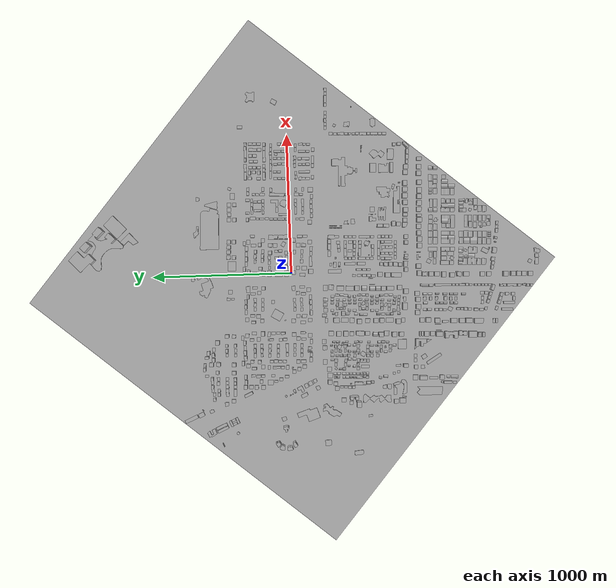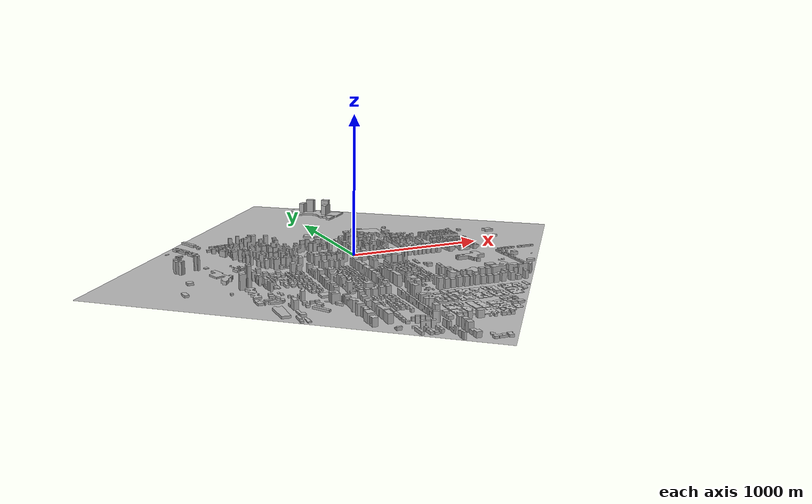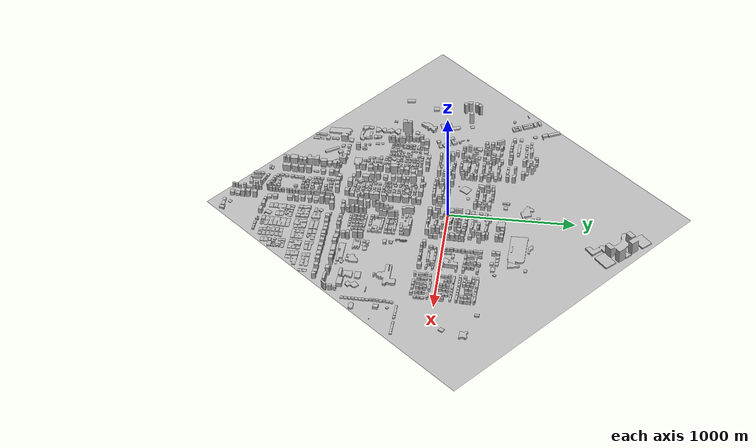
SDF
<sdf version='1.7'>
  <world name='default'>
    <scene>
      <ambient>0.4 0.4 0.4 1</ambient>
      <background>0.7 0.7 0.7 1</background>
      <shadows>1</shadows>
      <sky>
        <clouds>
          <speed>12</speed>
        </clouds>
      </sky>
      <fog>
        <type>linear</type>
        <start>10</start>
        <end>500</end>
        <density>1</density>
      </fog>
    </scene>

    <include>
      <uri>model://sun</uri>
    </include>

    <model name='abu_dhabi'>
      <pose>-50 -5.5 0 0 0 0.88</pose>
      <static>1</static>
      <link name='terrain'>
        <visual name='visual'>
          <geometry>
            <mesh>
              <uri>model://abu_dhabi/media/terrain.dae</uri>
            </mesh>
          </geometry>
        </visual>
        <collision name='collision'>
          <geometry>
            <mesh>
              <uri>model://abu_dhabi/media/terrain.dae</uri>
            </mesh>
          </geometry>
        </collision>
      </link>
      <link name='buildings'>
        <visual name='visual'>
          <geometry>
            <mesh>
              <uri>model://abu_dhabi/media/buildings.dae</uri>
            </mesh>
          </geometry>
        </visual>

        <collision name='collision'>
          <geometry>
            <mesh>
              <uri>model://abu_dhabi/media/buildings.dae</uri>
            </mesh>
          </geometry>
        </collision>

      </link>
    </model>

    <model name="laser_0">
      <static>false</static>
      <pose>0 0 1 0 0 0</pose>
      <link name="laser_link">
        <visual name="visual">
          <geometry>
            <box>
              <size>0.2 0.1 0.1</size>
            </box>
          </geometry>
        </visual>
        <collision name='collision'>
          <laser_retro>0</laser_retro>
          <max_contacts>10</max_contacts>
          <pose>0 0 0 0 -0 0</pose>
          <geometry>
            <box>
              <size>0.2 .1 .1</size>
            </box>
          </geometry>
        </collision>
        <sensor name="laser" type="ray">
          <pose>0 0 0.1 0 0 0</pose>
          <visualize>false</visualize>
          <update_rate>20</update_rate>
          <ray>
            <scan>
              <horizontal>
                <samples>24</samples>
                <resolution>1</resolution>
                <min_angle>0</min_angle>
                <max_angle>0</max_angle>
              </horizontal>
              <vertical>
                <samples>1</samples>
                <resolution>1</resolution>
                <min_angle>0.8</min_angle>
                <max_angle>0.8</max_angle>
              </vertical>
            </scan>
            <range>
              <min>0.05</min>
              <max>100.0</max>
              <resolution>0.02</resolution>
            </range>
            <noise>
              <type>gaussian</type>
              <mean>0.0</mean>
              <stddev>0.0</stddev>
            </noise>
          </ray>
          <plugin name="Multipath Plugin" filename="libMultipathSensorPlugin.so">
            <topicName>/multipath/scan</topicName>
            <offsetTopicName>/multipath/offset</offsetTopicName>
            <satRayTopicName>/multipath/sat_ray</satRayTopicName>
            <frameName>laser_0</frameName>
            <errorScale>1</errorScale>
            <disableNoise>1</disableNoise>
            <satNum>12</satNum>
            <satAzimuth>0 0.2 0.5 1.57 -1.57 -1 -0.2 3.14 3.0 1.0 0.1 -0.5</satAzimuth>
            <satElevation>1.2 1.3 0.8 1.2 1.1 1.0 1.3 1.5 1.4 1.4 1.3 1.2</satElevation>
          </plugin>
        </sensor>
        <self_collide>0</self_collide>
      </link>
      <plugin name="hb1_virtual_pose" filename="libgazebo_model_pose.so">
        <topic>/qualisys/hb1/pose</topic>
      </plugin>
    </model>

    <gui fullscreen='0'>
      <camera name='user_camera'>
        <pose>-10 10 100 0 0 0</pose>
        <view_controller>orbit</view_controller>
        <projection_type>perspective</projection_type>
        <track_visual>
          <name>laser_0</name>
          <follow>true</follow>
          <xyz>-10 -5 100 </xyz>
          <static>true</static>
          <min_dist>1.0</min_dist>
          <max_dist>300.0</max_dist>
        </track_visual>
      </camera>
    </gui>
  </world>
</sdf>
<!-- vim: set et fenc=utf-8 ff=unix sts=0 sw=2 ts=2 ft=xml: -->
